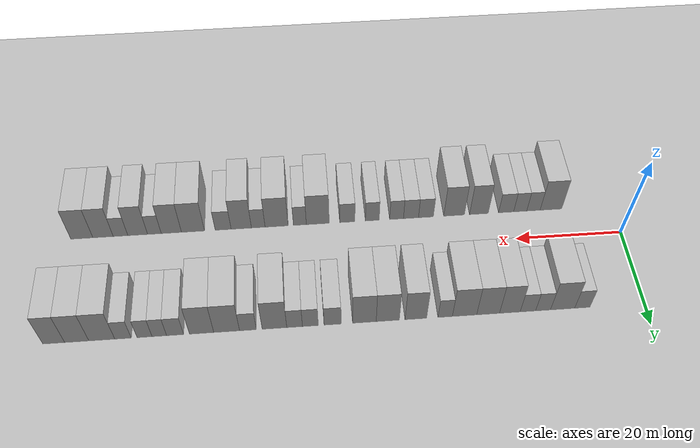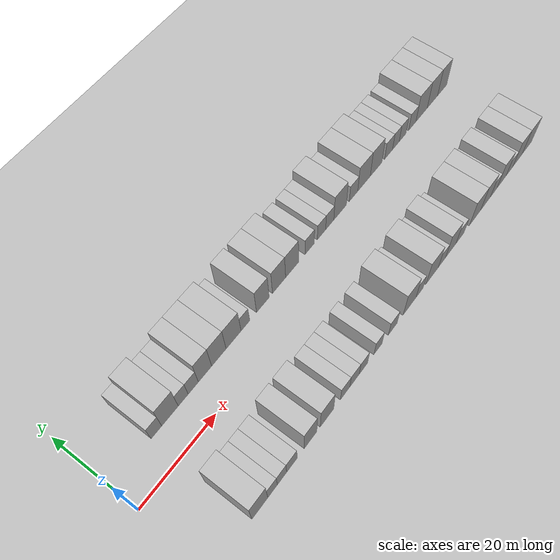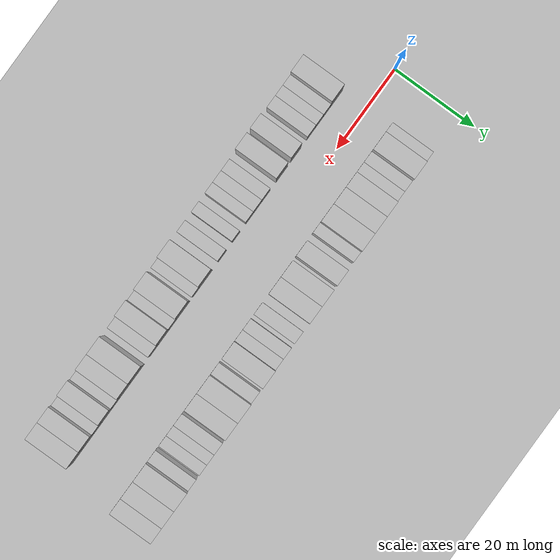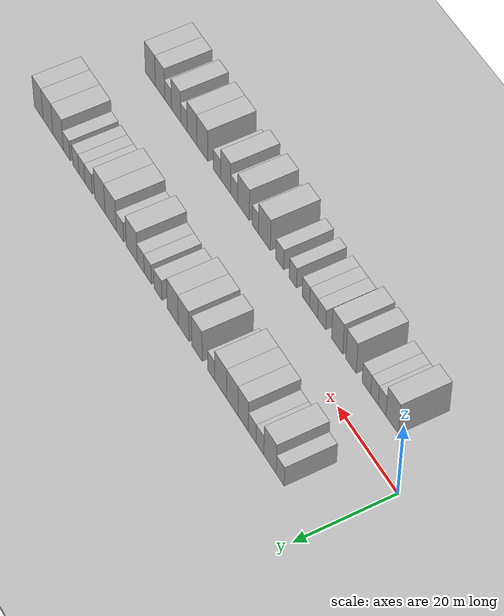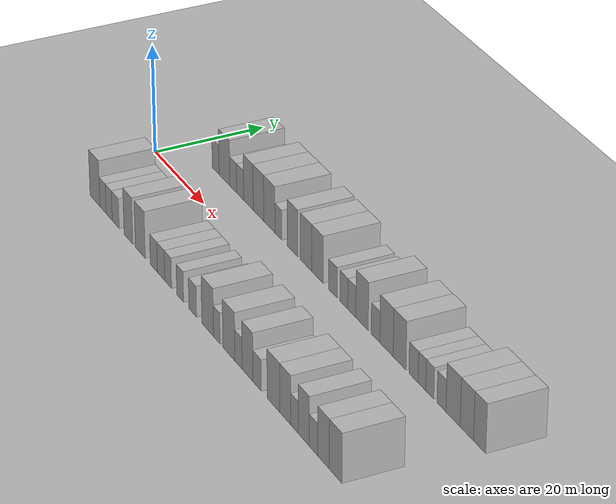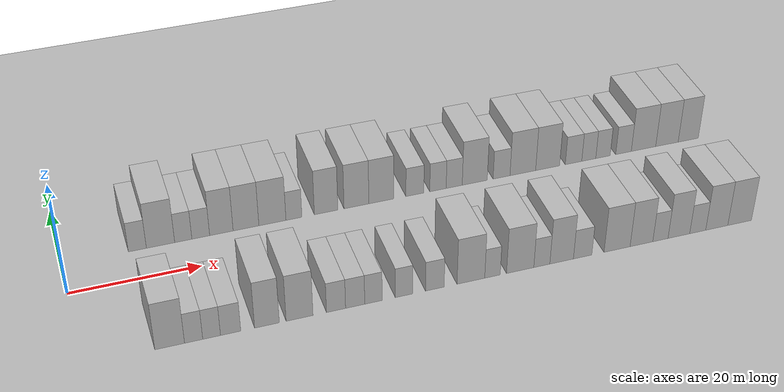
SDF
<sdf version="1.6">
 <world name="default">
  <include><name>ground_plane_1</name><uri>model://HANNAS_ground_plane</uri></include>
  <include>
   <name>ground_plane_2</name>
   <uri>model://HANNAS_ground_plane</uri>
   <pose>100 0 0  0 0 0</pose>
  </include>
  <model name="building_1">
   <static>1</static>
   <pose>11.3694 11.0000 0 0.000000 0.000000 1.570796</pose>
   <link name="link">
    <pose>0 0 3.00 0 0 0</pose>
    <collision name="collision"><geometry><box><size>10.0000 2.7388 6.0000</size></box></geometry></collision>
    <visual name="visual">
     <cast_shadows>0</cast_shadows>
     <geometry><box><size>10.0000 2.7388 6.0000</size></box></geometry>
     <material>
      <script>
       <uri>model://HANNAS_wall/materials/scripts</uri>
       <uri>model://HANNAS_wall/materials/textures</uri>
       <name>vrc/HANNAS_wall</name>
      </script>
     </material>
    </visual>
   </link>
  </model>
  <model name="building_2">
   <static>1</static>
   <pose>14.9033 11.0000 0 0.000000 0.000000 1.570796</pose>
   <link name="link">
    <pose>0 0 4.50 0 0 0</pose>
    <collision name="collision"><geometry><box><size>10.0000 4.3290 9.0000</size></box></geometry></collision>
    <visual name="visual">
     <cast_shadows>0</cast_shadows>
     <geometry><box><size>10.0000 4.3290 9.0000</size></box></geometry>
     <material>
      <script>
       <uri>model://HANNAS_wall/materials/scripts</uri>
       <uri>model://HANNAS_wall/materials/textures</uri>
       <name>vrc/HANNAS_wall</name>
      </script>
     </material>
    </visual>
   </link>
  </model>
  <model name="building_3">
   <static>1</static>
   <pose>18.3918 11.0000 0 0.000000 0.000000 1.570796</pose>
   <link name="link">
    <pose>0 0 3.00 0 0 0</pose>
    <collision name="collision"><geometry><box><size>10.0000 2.6480 6.0000</size></box></geometry></collision>
    <visual name="visual">
     <cast_shadows>0</cast_shadows>
     <geometry><box><size>10.0000 2.6480 6.0000</size></box></geometry>
     <material>
      <script>
       <uri>model://HANNAS_wall/materials/scripts</uri>
       <uri>model://HANNAS_wall/materials/textures</uri>
       <name>vrc/HANNAS_wall</name>
      </script>
     </material>
    </visual>
   </link>
  </model>
  <model name="building_4">
   <static>1</static>
   <pose>21.0929 11.0000 0 0.000000 0.000000 1.570796</pose>
   <link name="link">
    <pose>0 0 3.00 0 0 0</pose>
    <collision name="collision"><geometry><box><size>10.0000 2.7541 6.0000</size></box></geometry></collision>
    <visual name="visual">
     <cast_shadows>0</cast_shadows>
     <geometry><box><size>10.0000 2.7541 6.0000</size></box></geometry>
     <material>
      <script>
       <uri>model://HANNAS_wall/materials/scripts</uri>
       <uri>model://HANNAS_wall/materials/textures</uri>
       <name>vrc/HANNAS_wall</name>
      </script>
     </material>
    </visual>
   </link>
  </model>
  <model name="building_5">
   <static>1</static>
   <pose>24.3036 11.0000 0 0.000000 0.000000 1.570796</pose>
   <link name="link">
    <pose>0 0 4.50 0 0 0</pose>
    <collision name="collision"><geometry><box><size>10.0000 3.6674 9.0000</size></box></geometry></collision>
    <visual name="visual">
     <cast_shadows>0</cast_shadows>
     <geometry><box><size>10.0000 3.6674 9.0000</size></box></geometry>
     <material>
      <script>
       <uri>model://HANNAS_wall/materials/scripts</uri>
       <uri>model://HANNAS_wall/materials/textures</uri>
       <name>vrc/HANNAS_wall</name>
      </script>
     </material>
    </visual>
   </link>
  </model>
  <model name="building_6">
   <static>1</static>
   <pose>28.1631 11.0000 0 0.000000 0.000000 1.570796</pose>
   <link name="link">
    <pose>0 0 4.50 0 0 0</pose>
    <collision name="collision"><geometry><box><size>10.0000 4.0515 9.0000</size></box></geometry></collision>
    <visual name="visual">
     <cast_shadows>0</cast_shadows>
     <geometry><box><size>10.0000 4.0515 9.0000</size></box></geometry>
     <material>
      <script>
       <uri>model://HANNAS_wall/materials/scripts</uri>
       <uri>model://HANNAS_wall/materials/textures</uri>
       <name>vrc/HANNAS_wall</name>
      </script>
     </material>
    </visual>
   </link>
  </model>
  <model name="building_7">
   <static>1</static>
   <pose>32.3387 11.0000 0 0.000000 0.000000 1.570796</pose>
   <link name="link">
    <pose>0 0 4.50 0 0 0</pose>
    <collision name="collision"><geometry><box><size>10.0000 4.2998 9.0000</size></box></geometry></collision>
    <visual name="visual">
     <cast_shadows>0</cast_shadows>
     <geometry><box><size>10.0000 4.2998 9.0000</size></box></geometry>
     <material>
      <script>
       <uri>model://HANNAS_wall/materials/scripts</uri>
       <uri>model://HANNAS_wall/materials/textures</uri>
       <name>vrc/HANNAS_wall</name>
      </script>
     </material>
    </visual>
   </link>
  </model>
  <model name="building_8">
   <static>1</static>
   <pose>35.7635 11.0000 0 0.000000 0.000000 1.570796</pose>
   <link name="link">
    <pose>0 0 3.00 0 0 0</pose>
    <collision name="collision"><geometry><box><size>10.0000 2.5498 6.0000</size></box></geometry></collision>
    <visual name="visual">
     <cast_shadows>0</cast_shadows>
     <geometry><box><size>10.0000 2.5498 6.0000</size></box></geometry>
     <material>
      <script>
       <uri>model://HANNAS_wall/materials/scripts</uri>
       <uri>model://HANNAS_wall/materials/textures</uri>
       <name>vrc/HANNAS_wall</name>
      </script>
     </material>
    </visual>
   </link>
  </model>
  <model name="building_9">
   <static>1</static>
   <pose>40.9391 11.0000 0 0.000000 0.000000 1.570796</pose>
   <link name="link">
    <pose>0 0 4.50 0 0 0</pose>
    <collision name="collision"><geometry><box><size>10.0000 3.8014 9.0000</size></box></geometry></collision>
    <visual name="visual">
     <cast_shadows>0</cast_shadows>
     <geometry><box><size>10.0000 3.8014 9.0000</size></box></geometry>
     <material>
      <script>
       <uri>model://HANNAS_wall/materials/scripts</uri>
       <uri>model://HANNAS_wall/materials/textures</uri>
       <name>vrc/HANNAS_wall</name>
      </script>
     </material>
    </visual>
   </link>
  </model>
  <model name="building_10">
   <static>1</static>
   <pose>45.8664 11.0000 0 0.000000 0.000000 1.570796</pose>
   <link name="link">
    <pose>0 0 4.50 0 0 0</pose>
    <collision name="collision"><geometry><box><size>10.0000 4.0533 9.0000</size></box></geometry></collision>
    <visual name="visual">
     <cast_shadows>0</cast_shadows>
     <geometry><box><size>10.0000 4.0533 9.0000</size></box></geometry>
     <material>
      <script>
       <uri>model://HANNAS_wall/materials/scripts</uri>
       <uri>model://HANNAS_wall/materials/textures</uri>
       <name>vrc/HANNAS_wall</name>
      </script>
     </material>
    </visual>
   </link>
  </model>
  <model name="building_11">
   <static>1</static>
   <pose>49.9554 11.0000 0 0.000000 0.000000 1.570796</pose>
   <link name="link">
    <pose>0 0 4.50 0 0 0</pose>
    <collision name="collision"><geometry><box><size>10.0000 4.1247 9.0000</size></box></geometry></collision>
    <visual name="visual">
     <cast_shadows>0</cast_shadows>
     <geometry><box><size>10.0000 4.1247 9.0000</size></box></geometry>
     <material>
      <script>
       <uri>model://HANNAS_wall/materials/scripts</uri>
       <uri>model://HANNAS_wall/materials/textures</uri>
       <name>vrc/HANNAS_wall</name>
      </script>
     </material>
    </visual>
   </link>
  </model>
  <model name="building_12">
   <static>1</static>
   <pose>55.5107 11.0000 0 0.000000 0.000000 1.570796</pose>
   <link name="link">
    <pose>0 0 3.00 0 0 0</pose>
    <collision name="collision"><geometry><box><size>10.0000 2.9859 6.0000</size></box></geometry></collision>
    <visual name="visual">
     <cast_shadows>0</cast_shadows>
     <geometry><box><size>10.0000 2.9859 6.0000</size></box></geometry>
     <material>
      <script>
       <uri>model://HANNAS_wall/materials/scripts</uri>
       <uri>model://HANNAS_wall/materials/textures</uri>
       <name>vrc/HANNAS_wall</name>
      </script>
     </material>
    </visual>
   </link>
  </model>
  <model name="building_13">
   <static>1</static>
   <pose>59.3820 11.0000 0 0.000000 0.000000 1.570796</pose>
   <link name="link">
    <pose>0 0 3.00 0 0 0</pose>
    <collision name="collision"><geometry><box><size>10.0000 2.7569 6.0000</size></box></geometry></collision>
    <visual name="visual">
     <cast_shadows>0</cast_shadows>
     <geometry><box><size>10.0000 2.7569 6.0000</size></box></geometry>
     <material>
      <script>
       <uri>model://HANNAS_wall/materials/scripts</uri>
       <uri>model://HANNAS_wall/materials/textures</uri>
       <name>vrc/HANNAS_wall</name>
      </script>
     </material>
    </visual>
   </link>
  </model>
  <model name="building_14">
   <static>1</static>
   <pose>62.1194 11.0000 0 0.000000 0.000000 1.570796</pose>
   <link name="link">
    <pose>0 0 3.00 0 0 0</pose>
    <collision name="collision"><geometry><box><size>10.0000 2.7179 6.0000</size></box></geometry></collision>
    <visual name="visual">
     <cast_shadows>0</cast_shadows>
     <geometry><box><size>10.0000 2.7179 6.0000</size></box></geometry>
     <material>
      <script>
       <uri>model://HANNAS_wall/materials/scripts</uri>
       <uri>model://HANNAS_wall/materials/textures</uri>
       <name>vrc/HANNAS_wall</name>
      </script>
     </material>
    </visual>
   </link>
  </model>
  <model name="building_15">
   <static>1</static>
   <pose>65.6115 11.0000 0 0.000000 0.000000 1.570796</pose>
   <link name="link">
    <pose>0 0 4.50 0 0 0</pose>
    <collision name="collision"><geometry><box><size>10.0000 4.2663 9.0000</size></box></geometry></collision>
    <visual name="visual">
     <cast_shadows>0</cast_shadows>
     <geometry><box><size>10.0000 4.2663 9.0000</size></box></geometry>
     <material>
      <script>
       <uri>model://HANNAS_wall/materials/scripts</uri>
       <uri>model://HANNAS_wall/materials/textures</uri>
       <name>vrc/HANNAS_wall</name>
      </script>
     </material>
    </visual>
   </link>
  </model>
  <model name="building_16">
   <static>1</static>
   <pose>70.1960 11.0000 0 0.000000 0.000000 1.570796</pose>
   <link name="link">
    <pose>0 0 3.00 0 0 0</pose>
    <collision name="collision"><geometry><box><size>10.0000 2.9028 6.0000</size></box></geometry></collision>
    <visual name="visual">
     <cast_shadows>0</cast_shadows>
     <geometry><box><size>10.0000 2.9028 6.0000</size></box></geometry>
     <material>
      <script>
       <uri>model://HANNAS_wall/materials/scripts</uri>
       <uri>model://HANNAS_wall/materials/textures</uri>
       <name>vrc/HANNAS_wall</name>
      </script>
     </material>
    </visual>
   </link>
  </model>
  <model name="building_17">
   <static>1</static>
   <pose>73.8733 11.0000 0 0.000000 0.000000 1.570796</pose>
   <link name="link">
    <pose>0 0 4.50 0 0 0</pose>
    <collision name="collision"><geometry><box><size>10.0000 4.4518 9.0000</size></box></geometry></collision>
    <visual name="visual">
     <cast_shadows>0</cast_shadows>
     <geometry><box><size>10.0000 4.4518 9.0000</size></box></geometry>
     <material>
      <script>
       <uri>model://HANNAS_wall/materials/scripts</uri>
       <uri>model://HANNAS_wall/materials/textures</uri>
       <name>vrc/HANNAS_wall</name>
      </script>
     </material>
    </visual>
   </link>
  </model>
  <model name="building_18">
   <static>1</static>
   <pose>78.1906 11.0000 0 0.000000 0.000000 1.570796</pose>
   <link name="link">
    <pose>0 0 4.50 0 0 0</pose>
    <collision name="collision"><geometry><box><size>10.0000 4.1828 9.0000</size></box></geometry></collision>
    <visual name="visual">
     <cast_shadows>0</cast_shadows>
     <geometry><box><size>10.0000 4.1828 9.0000</size></box></geometry>
     <material>
      <script>
       <uri>model://HANNAS_wall/materials/scripts</uri>
       <uri>model://HANNAS_wall/materials/textures</uri>
       <name>vrc/HANNAS_wall</name>
      </script>
     </material>
    </visual>
   </link>
  </model>
  <model name="building_19">
   <static>1</static>
   <pose>82.7382 11.0000 0 0.000000 0.000000 1.570796</pose>
   <link name="link">
    <pose>0 0 3.00 0 0 0</pose>
    <collision name="collision"><geometry><box><size>10.0000 2.9123 6.0000</size></box></geometry></collision>
    <visual name="visual">
     <cast_shadows>0</cast_shadows>
     <geometry><box><size>10.0000 2.9123 6.0000</size></box></geometry>
     <material>
      <script>
       <uri>model://HANNAS_wall/materials/scripts</uri>
       <uri>model://HANNAS_wall/materials/textures</uri>
       <name>vrc/HANNAS_wall</name>
      </script>
     </material>
    </visual>
   </link>
  </model>
  <model name="building_20">
   <static>1</static>
   <pose>85.4375 11.0000 0 0.000000 0.000000 1.570796</pose>
   <link name="link">
    <pose>0 0 3.00 0 0 0</pose>
    <collision name="collision"><geometry><box><size>10.0000 2.4862 6.0000</size></box></geometry></collision>
    <visual name="visual">
     <cast_shadows>0</cast_shadows>
     <geometry><box><size>10.0000 2.4862 6.0000</size></box></geometry>
     <material>
      <script>
       <uri>model://HANNAS_wall/materials/scripts</uri>
       <uri>model://HANNAS_wall/materials/textures</uri>
       <name>vrc/HANNAS_wall</name>
      </script>
     </material>
    </visual>
   </link>
  </model>
  <model name="building_21">
   <static>1</static>
   <pose>87.9598 11.0000 0 0.000000 0.000000 1.570796</pose>
   <link name="link">
    <pose>0 0 3.00 0 0 0</pose>
    <collision name="collision"><geometry><box><size>10.0000 2.5585 6.0000</size></box></geometry></collision>
    <visual name="visual">
     <cast_shadows>0</cast_shadows>
     <geometry><box><size>10.0000 2.5585 6.0000</size></box></geometry>
     <material>
      <script>
       <uri>model://HANNAS_wall/materials/scripts</uri>
       <uri>model://HANNAS_wall/materials/textures</uri>
       <name>vrc/HANNAS_wall</name>
      </script>
     </material>
    </visual>
   </link>
  </model>
  <model name="building_22">
   <static>1</static>
   <pose>91.6398 11.0000 0 0.000000 0.000000 1.570796</pose>
   <link name="link">
    <pose>0 0 3.00 0 0 0</pose>
    <collision name="collision"><geometry><box><size>10.0000 2.8016 6.0000</size></box></geometry></collision>
    <visual name="visual">
     <cast_shadows>0</cast_shadows>
     <geometry><box><size>10.0000 2.8016 6.0000</size></box></geometry>
     <material>
      <script>
       <uri>model://HANNAS_wall/materials/scripts</uri>
       <uri>model://HANNAS_wall/materials/textures</uri>
       <name>vrc/HANNAS_wall</name>
      </script>
     </material>
    </visual>
   </link>
  </model>
  <model name="building_23">
   <static>1</static>
   <pose>95.2498 11.0000 0 0.000000 0.000000 1.570796</pose>
   <link name="link">
    <pose>0 0 4.50 0 0 0</pose>
    <collision name="collision"><geometry><box><size>10.0000 4.4185 9.0000</size></box></geometry></collision>
    <visual name="visual">
     <cast_shadows>0</cast_shadows>
     <geometry><box><size>10.0000 4.4185 9.0000</size></box></geometry>
     <material>
      <script>
       <uri>model://HANNAS_wall/materials/scripts</uri>
       <uri>model://HANNAS_wall/materials/textures</uri>
       <name>vrc/HANNAS_wall</name>
      </script>
     </material>
    </visual>
   </link>
  </model>
  <model name="building_24">
   <static>1</static>
   <pose>99.5107 11.0000 0 0.000000 0.000000 1.570796</pose>
   <link name="link">
    <pose>0 0 4.50 0 0 0</pose>
    <collision name="collision"><geometry><box><size>10.0000 4.1032 9.0000</size></box></geometry></collision>
    <visual name="visual">
     <cast_shadows>0</cast_shadows>
     <geometry><box><size>10.0000 4.1032 9.0000</size></box></geometry>
     <material>
      <script>
       <uri>model://HANNAS_wall/materials/scripts</uri>
       <uri>model://HANNAS_wall/materials/textures</uri>
       <name>vrc/HANNAS_wall</name>
      </script>
     </material>
    </visual>
   </link>
  </model>
  <model name="building_25">
   <static>1</static>
   <pose>103.4110 11.0000 0 0.000000 0.000000 1.570796</pose>
   <link name="link">
    <pose>0 0 4.50 0 0 0</pose>
    <collision name="collision"><geometry><box><size>10.0000 3.6974 9.0000</size></box></geometry></collision>
    <visual name="visual">
     <cast_shadows>0</cast_shadows>
     <geometry><box><size>10.0000 3.6974 9.0000</size></box></geometry>
     <material>
      <script>
       <uri>model://HANNAS_wall/materials/scripts</uri>
       <uri>model://HANNAS_wall/materials/textures</uri>
       <name>vrc/HANNAS_wall</name>
      </script>
     </material>
    </visual>
   </link>
  </model>
  <model name="building_51">
   <static>1</static>
   <pose>12.1043 -11.0000 0 0.000000 0.000000 1.570796</pose>
   <link name="link">
    <pose>0 0 4.50 0 0 0</pose>
    <collision name="collision"><geometry><box><size>10.0000 4.2086 9.0000</size></box></geometry></collision>
    <visual name="visual">
     <cast_shadows>0</cast_shadows>
     <geometry><box><size>10.0000 4.2086 9.0000</size></box></geometry>
     <material>
      <script>
       <uri>model://HANNAS_wall/materials/scripts</uri>
       <uri>model://HANNAS_wall/materials/textures</uri>
       <name>vrc/HANNAS_wall</name>
      </script>
     </material>
    </visual>
   </link>
  </model>
  <model name="building_52">
   <static>1</static>
   <pose>15.5019 -11.0000 0 0.000000 0.000000 1.570796</pose>
   <link name="link">
    <pose>0 0 3.00 0 0 0</pose>
    <collision name="collision"><geometry><box><size>10.0000 2.5865 6.0000</size></box></geometry></collision>
    <visual name="visual">
     <cast_shadows>0</cast_shadows>
     <geometry><box><size>10.0000 2.5865 6.0000</size></box></geometry>
     <material>
      <script>
       <uri>model://HANNAS_wall/materials/scripts</uri>
       <uri>model://HANNAS_wall/materials/textures</uri>
       <name>vrc/HANNAS_wall</name>
      </script>
     </material>
    </visual>
   </link>
  </model>
  <model name="building_53">
   <static>1</static>
   <pose>18.0658 -11.0000 0 0.000000 0.000000 1.570796</pose>
   <link name="link">
    <pose>0 0 3.00 0 0 0</pose>
    <collision name="collision"><geometry><box><size>10.0000 2.5414 6.0000</size></box></geometry></collision>
    <visual name="visual">
     <cast_shadows>0</cast_shadows>
     <geometry><box><size>10.0000 2.5414 6.0000</size></box></geometry>
     <material>
      <script>
       <uri>model://HANNAS_wall/materials/scripts</uri>
       <uri>model://HANNAS_wall/materials/textures</uri>
       <name>vrc/HANNAS_wall</name>
      </script>
     </material>
    </visual>
   </link>
  </model>
  <model name="building_54">
   <static>1</static>
   <pose>20.7966 -11.0000 0 0.000000 0.000000 1.570796</pose>
   <link name="link">
    <pose>0 0 3.00 0 0 0</pose>
    <collision name="collision"><geometry><box><size>10.0000 2.9200 6.0000</size></box></geometry></collision>
    <visual name="visual">
     <cast_shadows>0</cast_shadows>
     <geometry><box><size>10.0000 2.9200 6.0000</size></box></geometry>
     <material>
      <script>
       <uri>model://HANNAS_wall/materials/scripts</uri>
       <uri>model://HANNAS_wall/materials/textures</uri>
       <name>vrc/HANNAS_wall</name>
      </script>
     </material>
    </visual>
   </link>
  </model>
  <model name="building_55">
   <static>1</static>
   <pose>26.0605 -11.0000 0 0.000000 0.000000 1.570796</pose>
   <link name="link">
    <pose>0 0 4.50 0 0 0</pose>
    <collision name="collision"><geometry><box><size>10.0000 3.6078 9.0000</size></box></geometry></collision>
    <visual name="visual">
     <cast_shadows>0</cast_shadows>
     <geometry><box><size>10.0000 3.6078 9.0000</size></box></geometry>
     <material>
      <script>
       <uri>model://HANNAS_wall/materials/scripts</uri>
       <uri>model://HANNAS_wall/materials/textures</uri>
       <name>vrc/HANNAS_wall</name>
      </script>
     </material>
    </visual>
   </link>
  </model>
  <model name="building_56">
   <static>1</static>
   <pose>30.8478 -11.0000 0 0.000000 0.000000 1.570796</pose>
   <link name="link">
    <pose>0 0 4.50 0 0 0</pose>
    <collision name="collision"><geometry><box><size>10.0000 3.9669 9.0000</size></box></geometry></collision>
    <visual name="visual">
     <cast_shadows>0</cast_shadows>
     <geometry><box><size>10.0000 3.9669 9.0000</size></box></geometry>
     <material>
      <script>
       <uri>model://HANNAS_wall/materials/scripts</uri>
       <uri>model://HANNAS_wall/materials/textures</uri>
       <name>vrc/HANNAS_wall</name>
      </script>
     </material>
    </visual>
   </link>
  </model>
  <model name="building_57">
   <static>1</static>
   <pose>36.2564 -11.0000 0 0.000000 0.000000 1.570796</pose>
   <link name="link">
    <pose>0 0 3.00 0 0 0</pose>
    <collision name="collision"><geometry><box><size>10.0000 2.8503 6.0000</size></box></geometry></collision>
    <visual name="visual">
     <cast_shadows>0</cast_shadows>
     <geometry><box><size>10.0000 2.8503 6.0000</size></box></geometry>
     <material>
      <script>
       <uri>model://HANNAS_wall/materials/scripts</uri>
       <uri>model://HANNAS_wall/materials/textures</uri>
       <name>vrc/HANNAS_wall</name>
      </script>
     </material>
    </visual>
   </link>
  </model>
  <model name="building_58">
   <static>1</static>
   <pose>39.1205 -11.0000 0 0.000000 0.000000 1.570796</pose>
   <link name="link">
    <pose>0 0 3.00 0 0 0</pose>
    <collision name="collision"><geometry><box><size>10.0000 2.8781 6.0000</size></box></geometry></collision>
    <visual name="visual">
     <cast_shadows>0</cast_shadows>
     <geometry><box><size>10.0000 2.8781 6.0000</size></box></geometry>
     <material>
      <script>
       <uri>model://HANNAS_wall/materials/scripts</uri>
       <uri>model://HANNAS_wall/materials/textures</uri>
       <name>vrc/HANNAS_wall</name>
      </script>
     </material>
    </visual>
   </link>
  </model>
  <model name="building_59">
   <static>1</static>
   <pose>41.8778 -11.0000 0 0.000000 0.000000 1.570796</pose>
   <link name="link">
    <pose>0 0 3.00 0 0 0</pose>
    <collision name="collision"><geometry><box><size>10.0000 2.6364 6.0000</size></box></geometry></collision>
    <visual name="visual">
     <cast_shadows>0</cast_shadows>
     <geometry><box><size>10.0000 2.6364 6.0000</size></box></geometry>
     <material>
      <script>
       <uri>model://HANNAS_wall/materials/scripts</uri>
       <uri>model://HANNAS_wall/materials/textures</uri>
       <name>vrc/HANNAS_wall</name>
      </script>
     </material>
    </visual>
   </link>
  </model>
  <model name="building_60">
   <static>1</static>
   <pose>46.5129 -11.0000 0 0.000000 0.000000 1.570796</pose>
   <link name="link">
    <pose>0 0 3.00 0 0 0</pose>
    <collision name="collision"><geometry><box><size>10.0000 2.6340 6.0000</size></box></geometry></collision>
    <visual name="visual">
     <cast_shadows>0</cast_shadows>
     <geometry><box><size>10.0000 2.6340 6.0000</size></box></geometry>
     <material>
      <script>
       <uri>model://HANNAS_wall/materials/scripts</uri>
       <uri>model://HANNAS_wall/materials/textures</uri>
       <name>vrc/HANNAS_wall</name>
      </script>
     </material>
    </visual>
   </link>
  </model>
  <model name="building_61">
   <static>1</static>
   <pose>51.2699 -11.0000 0 0.000000 0.000000 1.570796</pose>
   <link name="link">
    <pose>0 0 3.00 0 0 0</pose>
    <collision name="collision"><geometry><box><size>10.0000 2.8799 6.0000</size></box></geometry></collision>
    <visual name="visual">
     <cast_shadows>0</cast_shadows>
     <geometry><box><size>10.0000 2.8799 6.0000</size></box></geometry>
     <material>
      <script>
       <uri>model://HANNAS_wall/materials/scripts</uri>
       <uri>model://HANNAS_wall/materials/textures</uri>
       <name>vrc/HANNAS_wall</name>
      </script>
     </material>
    </visual>
   </link>
  </model>
  <model name="building_62">
   <static>1</static>
   <pose>56.8804 -11.0000 0 0.000000 0.000000 1.570796</pose>
   <link name="link">
    <pose>0 0 4.50 0 0 0</pose>
    <collision name="collision"><geometry><box><size>10.0000 4.3411 9.0000</size></box></geometry></collision>
    <visual name="visual">
     <cast_shadows>0</cast_shadows>
     <geometry><box><size>10.0000 4.3411 9.0000</size></box></geometry>
     <material>
      <script>
       <uri>model://HANNAS_wall/materials/scripts</uri>
       <uri>model://HANNAS_wall/materials/textures</uri>
       <name>vrc/HANNAS_wall</name>
      </script>
     </material>
    </visual>
   </link>
  </model>
  <model name="building_63">
   <static>1</static>
   <pose>60.2706 -11.0000 0 0.000000 0.000000 1.570796</pose>
   <link name="link">
    <pose>0 0 3.00 0 0 0</pose>
    <collision name="collision"><geometry><box><size>10.0000 2.4393 6.0000</size></box></geometry></collision>
    <visual name="visual">
     <cast_shadows>0</cast_shadows>
     <geometry><box><size>10.0000 2.4393 6.0000</size></box></geometry>
     <material>
      <script>
       <uri>model://HANNAS_wall/materials/scripts</uri>
       <uri>model://HANNAS_wall/materials/textures</uri>
       <name>vrc/HANNAS_wall</name>
      </script>
     </material>
    </visual>
   </link>
  </model>
  <model name="building_64">
   <static>1</static>
   <pose>64.6664 -11.0000 0 0.000000 0.000000 1.570796</pose>
   <link name="link">
    <pose>0 0 4.50 0 0 0</pose>
    <collision name="collision"><geometry><box><size>10.0000 4.3523 9.0000</size></box></geometry></collision>
    <visual name="visual">
     <cast_shadows>0</cast_shadows>
     <geometry><box><size>10.0000 4.3523 9.0000</size></box></geometry>
     <material>
      <script>
       <uri>model://HANNAS_wall/materials/scripts</uri>
       <uri>model://HANNAS_wall/materials/textures</uri>
       <name>vrc/HANNAS_wall</name>
      </script>
     </material>
    </visual>
   </link>
  </model>
  <model name="building_65">
   <static>1</static>
   <pose>68.1309 -11.0000 0 0.000000 0.000000 1.570796</pose>
   <link name="link">
    <pose>0 0 3.00 0 0 0</pose>
    <collision name="collision"><geometry><box><size>10.0000 2.5768 6.0000</size></box></geometry></collision>
    <visual name="visual">
     <cast_shadows>0</cast_shadows>
     <geometry><box><size>10.0000 2.5768 6.0000</size></box></geometry>
     <material>
      <script>
       <uri>model://HANNAS_wall/materials/scripts</uri>
       <uri>model://HANNAS_wall/materials/textures</uri>
       <name>vrc/HANNAS_wall</name>
      </script>
     </material>
    </visual>
   </link>
  </model>
  <model name="building_66">
   <static>1</static>
   <pose>71.3247 -11.0000 0 0.000000 0.000000 1.570796</pose>
   <link name="link">
    <pose>0 0 4.50 0 0 0</pose>
    <collision name="collision"><geometry><box><size>10.0000 3.8108 9.0000</size></box></geometry></collision>
    <visual name="visual">
     <cast_shadows>0</cast_shadows>
     <geometry><box><size>10.0000 3.8108 9.0000</size></box></geometry>
     <material>
      <script>
       <uri>model://HANNAS_wall/materials/scripts</uri>
       <uri>model://HANNAS_wall/materials/textures</uri>
       <name>vrc/HANNAS_wall</name>
      </script>
     </material>
    </visual>
   </link>
  </model>
  <model name="building_67">
   <static>1</static>
   <pose>74.7285 -11.0000 0 0.000000 0.000000 1.570796</pose>
   <link name="link">
    <pose>0 0 3.00 0 0 0</pose>
    <collision name="collision"><geometry><box><size>10.0000 2.9967 6.0000</size></box></geometry></collision>
    <visual name="visual">
     <cast_shadows>0</cast_shadows>
     <geometry><box><size>10.0000 2.9967 6.0000</size></box></geometry>
     <material>
      <script>
       <uri>model://HANNAS_wall/materials/scripts</uri>
       <uri>model://HANNAS_wall/materials/textures</uri>
       <name>vrc/HANNAS_wall</name>
      </script>
     </material>
    </visual>
   </link>
  </model>
  <model name="building_68">
   <static>1</static>
   <pose>80.3791 -11.0000 0 0.000000 0.000000 1.570796</pose>
   <link name="link">
    <pose>0 0 4.50 0 0 0</pose>
    <collision name="collision"><geometry><box><size>10.0000 4.3046 9.0000</size></box></geometry></collision>
    <visual name="visual">
     <cast_shadows>0</cast_shadows>
     <geometry><box><size>10.0000 4.3046 9.0000</size></box></geometry>
     <material>
      <script>
       <uri>model://HANNAS_wall/materials/scripts</uri>
       <uri>model://HANNAS_wall/materials/textures</uri>
       <name>vrc/HANNAS_wall</name>
      </script>
     </material>
    </visual>
   </link>
  </model>
  <model name="building_69">
   <static>1</static>
   <pose>84.4229 -11.0000 0 0.000000 0.000000 1.570796</pose>
   <link name="link">
    <pose>0 0 4.50 0 0 0</pose>
    <collision name="collision"><geometry><box><size>10.0000 3.7829 9.0000</size></box></geometry></collision>
    <visual name="visual">
     <cast_shadows>0</cast_shadows>
     <geometry><box><size>10.0000 3.7829 9.0000</size></box></geometry>
     <material>
      <script>
       <uri>model://HANNAS_wall/materials/scripts</uri>
       <uri>model://HANNAS_wall/materials/textures</uri>
       <name>vrc/HANNAS_wall</name>
      </script>
     </material>
    </visual>
   </link>
  </model>
  <model name="building_70">
   <static>1</static>
   <pose>87.5889 -11.0000 0 0.000000 0.000000 1.570796</pose>
   <link name="link">
    <pose>0 0 3.00 0 0 0</pose>
    <collision name="collision"><geometry><box><size>10.0000 2.5490 6.0000</size></box></geometry></collision>
    <visual name="visual">
     <cast_shadows>0</cast_shadows>
     <geometry><box><size>10.0000 2.5490 6.0000</size></box></geometry>
     <material>
      <script>
       <uri>model://HANNAS_wall/materials/scripts</uri>
       <uri>model://HANNAS_wall/materials/textures</uri>
       <name>vrc/HANNAS_wall</name>
      </script>
     </material>
    </visual>
   </link>
  </model>
  <model name="building_71">
   <static>1</static>
   <pose>90.6943 -11.0000 0 0.000000 0.000000 1.570796</pose>
   <link name="link">
    <pose>0 0 4.50 0 0 0</pose>
    <collision name="collision"><geometry><box><size>10.0000 3.6619 9.0000</size></box></geometry></collision>
    <visual name="visual">
     <cast_shadows>0</cast_shadows>
     <geometry><box><size>10.0000 3.6619 9.0000</size></box></geometry>
     <material>
      <script>
       <uri>model://HANNAS_wall/materials/scripts</uri>
       <uri>model://HANNAS_wall/materials/textures</uri>
       <name>vrc/HANNAS_wall</name>
      </script>
     </material>
    </visual>
   </link>
  </model>
  <model name="building_72">
   <static>1</static>
   <pose>93.8847 -11.0000 0 0.000000 0.000000 1.570796</pose>
   <link name="link">
    <pose>0 0 3.00 0 0 0</pose>
    <collision name="collision"><geometry><box><size>10.0000 2.7189 6.0000</size></box></geometry></collision>
    <visual name="visual">
     <cast_shadows>0</cast_shadows>
     <geometry><box><size>10.0000 2.7189 6.0000</size></box></geometry>
     <material>
      <script>
       <uri>model://HANNAS_wall/materials/scripts</uri>
       <uri>model://HANNAS_wall/materials/textures</uri>
       <name>vrc/HANNAS_wall</name>
      </script>
     </material>
    </visual>
   </link>
  </model>
  <model name="building_73">
   <static>1</static>
   <pose>97.1318 -11.0000 0 0.000000 0.000000 1.570796</pose>
   <link name="link">
    <pose>0 0 4.50 0 0 0</pose>
    <collision name="collision"><geometry><box><size>10.0000 3.7753 9.0000</size></box></geometry></collision>
    <visual name="visual">
     <cast_shadows>0</cast_shadows>
     <geometry><box><size>10.0000 3.7753 9.0000</size></box></geometry>
     <material>
      <script>
       <uri>model://HANNAS_wall/materials/scripts</uri>
       <uri>model://HANNAS_wall/materials/textures</uri>
       <name>vrc/HANNAS_wall</name>
      </script>
     </material>
    </visual>
   </link>
  </model>
  <model name="building_74">
   <static>1</static>
   <pose>101.0585 -11.0000 0 0.000000 0.000000 1.570796</pose>
   <link name="link">
    <pose>0 0 4.50 0 0 0</pose>
    <collision name="collision"><geometry><box><size>10.0000 4.0779 9.0000</size></box></geometry></collision>
    <visual name="visual">
     <cast_shadows>0</cast_shadows>
     <geometry><box><size>10.0000 4.0779 9.0000</size></box></geometry>
     <material>
      <script>
       <uri>model://HANNAS_wall/materials/scripts</uri>
       <uri>model://HANNAS_wall/materials/textures</uri>
       <name>vrc/HANNAS_wall</name>
      </script>
     </material>
    </visual>
   </link>
  </model>
 </world>
</sdf>
